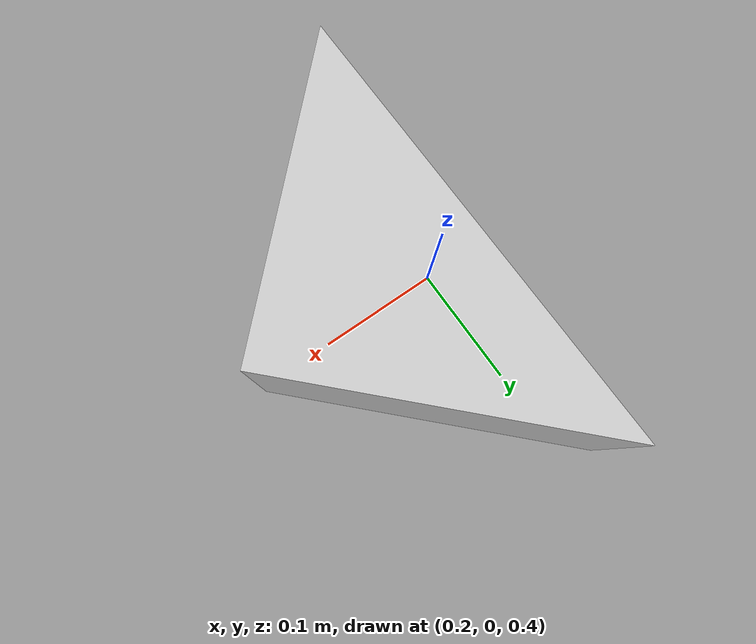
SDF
<?xml version="1.0" ?>
<sdf version="1.6">
  <model name="docking_station">
    <static>true</static>
    <link name="link">
      <visual name="visual">
        <geometry>
          <mesh>
            <uri>model://docking_station/meshes/docking_station.dae</uri>
          </mesh>
        </geometry>
      </visual>

      <collision name="collision">
        <geometry>
          <mesh>
            <uri>model://docking_station/meshes/docking_station.dae</uri>
          </mesh>
        </geometry>
      </collision>
    </link>
  </model>
</sdf>
